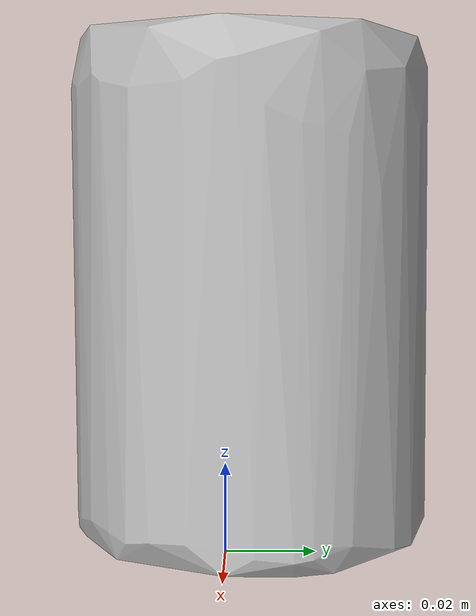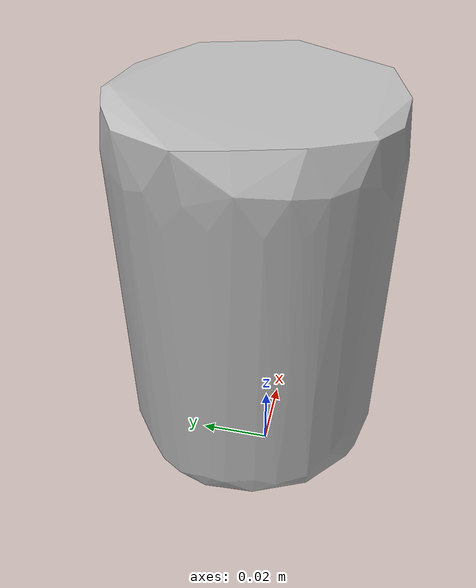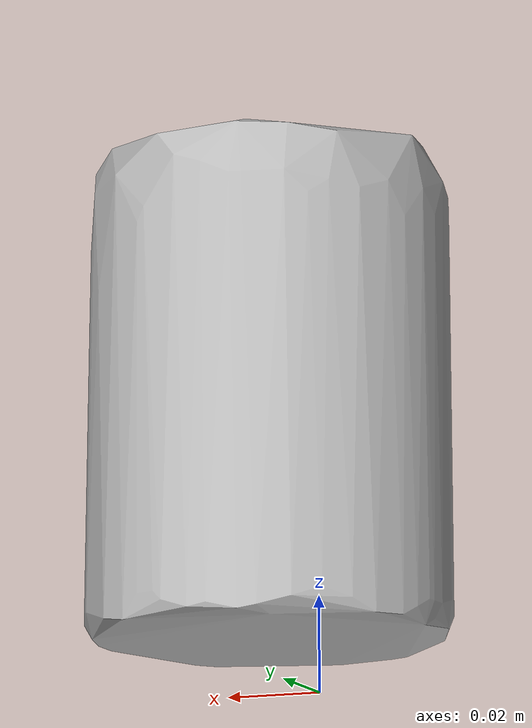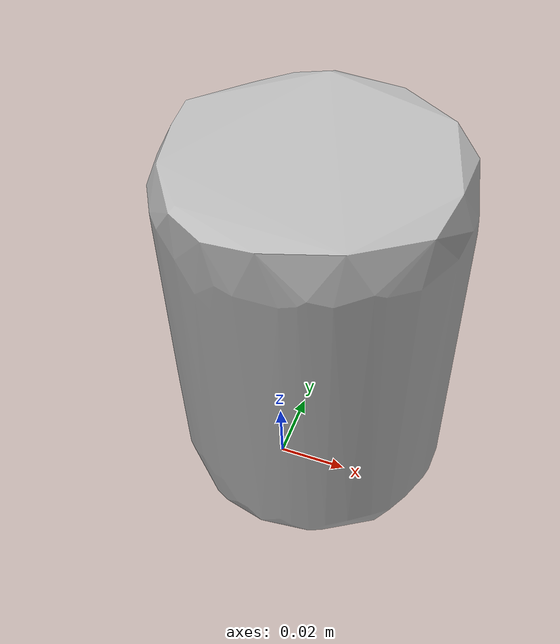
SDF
<?xml version='1.0'?>
<sdf version="1.4">
  <model name="hunts_sauce">
    <static>false</static>
    <link name="link">
      <inertial>
        <pose>0.008798237825065353 0.005395430386422035 0.05564673988767472 3.137666107242038 0.005927568145280188 -1.113297560425211</pose>
        <mass>0.05091738323313126</mass>
        <inertia>
          <ixx>6.631204354463445e-05</ixx>
          <ixy>5.947035837658293e-21</ixy>
          <ixz>4.1388926698293075e-21</ixz>
          <iyy>6.518099657470821e-05</iyy>
          <iyz>2.5260655798762315e-21</iyz>
          <izz>3.9541949211717826e-05</izz>
        </inertia>
      </inertial>
      <collision name="collision">
        <geometry>
          <mesh>
            <!-- Use a downsampled mesh for collisions -->
            <uri>model:///hunts_sauce/hunts_sauce_250_collision.obj</uri>
	        </mesh>
        </geometry>
        <surface>
      </surface>
      </collision>
      <visual name="visual">
        <geometry>
          <mesh>
            <uri>model:///hunts_sauce/optimized_tsdf_texture_mapped_mesh.obj</uri>
	        </mesh>
        </geometry>
        <material>
          <script>
            <uri>model:///hunts_sauce/hunts_sauce.material</uri>
            <name>hunts_sauce</name>
          </script>
        </material>
      </visual>
    </link>
  </model>
</sdf>
